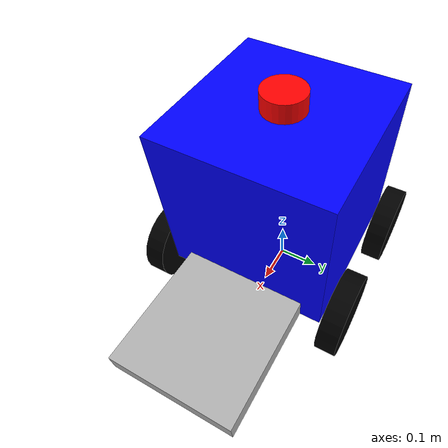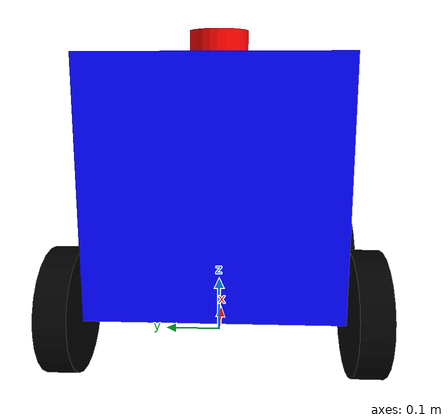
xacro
<?xml version="1.0"?>
<robot xmlns:xacro="http://www.ros.org/wiki/xacro" name="my_robot">

  <xacro:macro name="inertial_box" params="mass x y z">
    <inertial>
      <origin xyz="0 0 0" rpy="0 0 0"/>
      <mass value="${mass}" />
      <inertia ixx="${(1/12) * mass * (y*y+z*z)}" ixy="0.0" ixz="0.0"
               iyy="${(1/12) * mass * (x*x+z*z)}" iyz="0.0"
               izz="${(1/12) * mass * (x*x+y*y)}" />
    </inertial>
  </xacro:macro>

  <xacro:macro name="inertial_cylinder" params="mass length radius">
    <inertial>
      <origin xyz="0 0 0" rpy="0 0 0"/>
      <mass value="${mass}" />
      <inertia ixx="${(1/12) * mass * (3*radius*radius + length*length)}" ixy="0.0" ixz="0.0"
               iyy="${(1/12) * mass * (3*radius*radius + length*length)}" iyz="0.0"
               izz="${(1/2) * mass * (radius*radius)}" />
    </inertial>
  </xacro:macro>

  <link name="base_footprint"></link>

  <joint name="base_joint" type="fixed">
    <parent link="base_footprint"/>
    <child link="base_link"/>
    <origin xyz="0 0 0.3" rpy="0 0 0"/>
  </joint>

  <link name="base_link">
    <visual>
      <geometry><box size="0.4 0.4 0.4"/></geometry>
      <material name="blue"><color rgba="0 0 1 1"/></material>
    </visual>
    <collision>
      <geometry><box size="0.4 0.4 0.4"/></geometry>
    </collision>
    <xacro:inertial_box mass="6.0" x="0.4" y="0.4" z="0.4"/>
  </link>

  <link name="fork_link">
    <visual>
      <geometry><box size="0.3 0.3 0.05"/></geometry>
      <material name="gray"><color rgba="0.7 0.7 0.7 1"/></material>
    </visual>
    <collision>
      <geometry><box size="0.3 0.3 0.05"/></geometry>
    </collision>
    <xacro:inertial_box mass="1.0" x="0.3" y="0.3" z="0.05"/>
  </link>

  <joint name="fork_joint" type="fixed">
    <parent link="base_link"/>
    <child link="fork_link"/>
    <origin xyz="0.35 0 -0.175" rpy="0 0 0"/>
  </joint>

  <link name="lidar_link">
    <visual>
      <geometry><cylinder radius="0.05" length="0.05"/></geometry>
      <material name="red"><color rgba="1 0 0 1"/></material>
    </visual>
    <collision>
      <geometry><cylinder radius="0.05" length="0.05"/></geometry>
    </collision>
    <xacro:inertial_cylinder mass="0.2" length="0.05" radius="0.05"/>
  </link>

  <joint name="lidar_link_joint" type="fixed">
    <parent link="base_link"/>
    <child link="lidar_link"/>
    <origin xyz="0 0 0.22" rpy="0 0 0"/> </joint>

  <xacro:macro name="wheel" params="prefix x_val y_val">
    <link name="${prefix}_wheel">
      <visual>
        <origin rpy="1.5708 0 0"/>
        <geometry><cylinder radius="0.1" length="0.05"/></geometry>
        <material name="black"><color rgba="0 0 0 1"/></material>
      </visual>

      <collision>
        <origin rpy="1.5708 0 0"/>
        <geometry><cylinder radius="0.1" length="0.05"/></geometry>
      </collision>

      <xacro:inertial_cylinder mass="0.5" length="0.05" radius="0.1"/>
    </link>

    <joint name="${prefix}_wheel_joint" type="continuous">
      <parent link="base_link"/>
      <child link="${prefix}_wheel"/>
      <origin xyz="${x_val} ${y_val} -0.2" rpy="0 0 0"/>
      <axis xyz="0 1 0"/>
      <dynamics damping="0.2" friction="0.2"/>
    </joint>

    <gazebo reference="${prefix}_wheel">
      <mu1>200.0</mu1>
      <mu2>200.0</mu2>
      <kp>1000000.0</kp>
      <kd>1.0</kd>
      <fdir1>1 0 0</fdir1>
    </gazebo>
  </xacro:macro>

  <xacro:wheel prefix="front_left"  x_val="0.15"  y_val="0.235"/>
  <xacro:wheel prefix="front_right" x_val="0.15"  y_val="-0.235"/>
  <xacro:wheel prefix="rear_left"   x_val="-0.15" y_val="0.235"/>
  <xacro:wheel prefix="rear_right"  x_val="-0.15" y_val="-0.235"/>

  <link name="imu_link"/>

  <joint name="imu_joint" type="fixed">
    <parent link="base_link"/>
    <child link="imu_link"/>
    <origin xyz="0 0 0" rpy="0 0 0"/>
  </joint>

  <gazebo reference="imu_link">
   <sensor name="imu_sensor" type="imu">
      <always_on>true</always_on>
      <update_rate>100</update_rate>
      <visualize>true</visualize>

      <plugin filename="libgazebo_ros_imu_sensor.so" name="imu_plugin">
        <ros>
         <remapping>~/out:=imu/data</remapping>
        </ros>
        <initial_orientation_as_reference>false</initial_orientation_as_reference>
      </plugin>
    </sensor>
  </gazebo>

  <gazebo>
    <plugin name="skid_steer_drive" filename="libgazebo_ros_diff_drive.so">
      <update_rate>100</update_rate>
      <num_wheel_pairs>2</num_wheel_pairs>

      <left_joint>front_left_wheel_joint</left_joint>
      <right_joint>front_right_wheel_joint</right_joint>

      <left_joint>rear_left_wheel_joint</left_joint>
      <right_joint>rear_right_wheel_joint</right_joint>

      <wheel_separation>0.45</wheel_separation>
      <wheel_diameter>0.2</wheel_diameter>

      <max_wheel_torque>200</max_wheel_torque>
      <max_wheel_acceleration>10.0</max_wheel_acceleration>

      <covariance_x>0.0001</covariance_x>
      <covariance_y>0.0001</covariance_y>
      <covariance_yaw>0.01</covariance_yaw>

      <publish_odom>true</publish_odom>
      <publish_odom_tf>true</publish_odom_tf>
      <publish_wheel_tf>true</publish_wheel_tf>

      <odometry_source>1</odometry_source>

      <odometry_frame>odom</odometry_frame>
      <robot_base_frame>base_footprint</robot_base_frame>
    </plugin>
  </gazebo>

  <gazebo reference="lidar_link">
    <sensor name="lidar_3d" type="ray">
      <always_on>true</always_on>
      <visualize>false</visualize>
      <update_rate>10</update_rate>

      <ray>
        <scan>
          <horizontal>
            <samples>360</samples>
            <resolution>1.0</resolution>
            <min_angle>-3.14159</min_angle>
            <max_angle>3.14159</max_angle>
          </horizontal>
          <vertical>
            <samples>16</samples>
            <resolution>1.0</resolution>
            <min_angle>-0.261799</min_angle>
            <max_angle>0.261799</max_angle>
          </vertical>
        </scan>
        <range>
          <min>0.40</min>
          <max>12.0</max>
          <resolution>0.015</resolution>
        </range>
        <noise>
          <type>gaussian</type>
          <mean>0.0</mean>
          <stddev>0.01</stddev>
        </noise>
      </ray>

      <plugin name="scan_3d" filename="libgazebo_ros_ray_sensor.so">
        <ros>
          <remapping>~/out:=points</remapping>
        </ros>
        <output_type>sensor_msgs/PointCloud2</output_type>
        <frame_name>lidar_link</frame_name>
      </plugin>
    </sensor>
  </gazebo>

  <gazebo>
    <plugin name="wheel_encoder_plugin" filename="libgazebo_ros_joint_state_publisher.so">
      <ros>
        <namespace>/</namespace>
        <remapping>joint_states:=wheel_encoders</remapping>
      </ros>
      <update_rate>30.0</update_rate>

      <joint_name>front_left_wheel_joint</joint_name>
      <joint_name>front_right_wheel_joint</joint_name>
      <joint_name>rear_left_wheel_joint</joint_name>
      <joint_name>rear_right_wheel_joint</joint_name>
    </plugin>
  </gazebo>

</robot>
